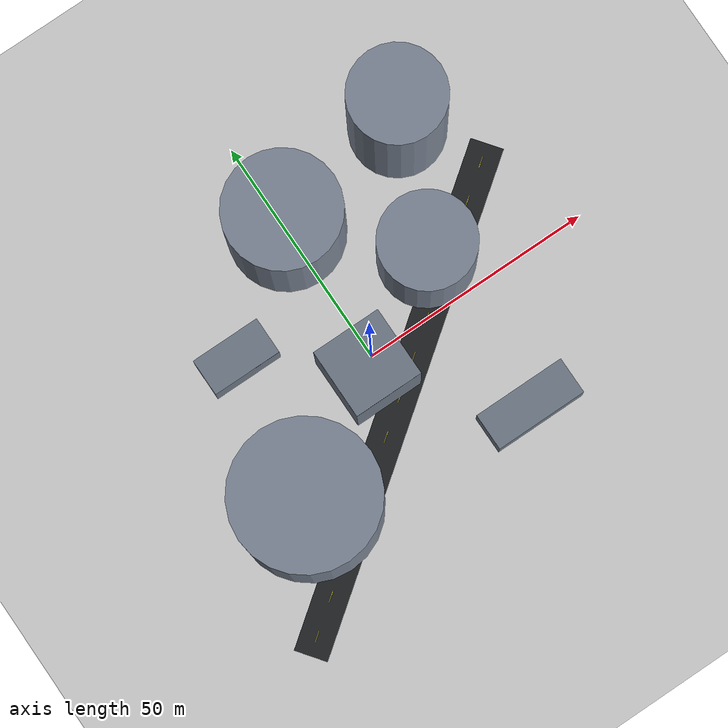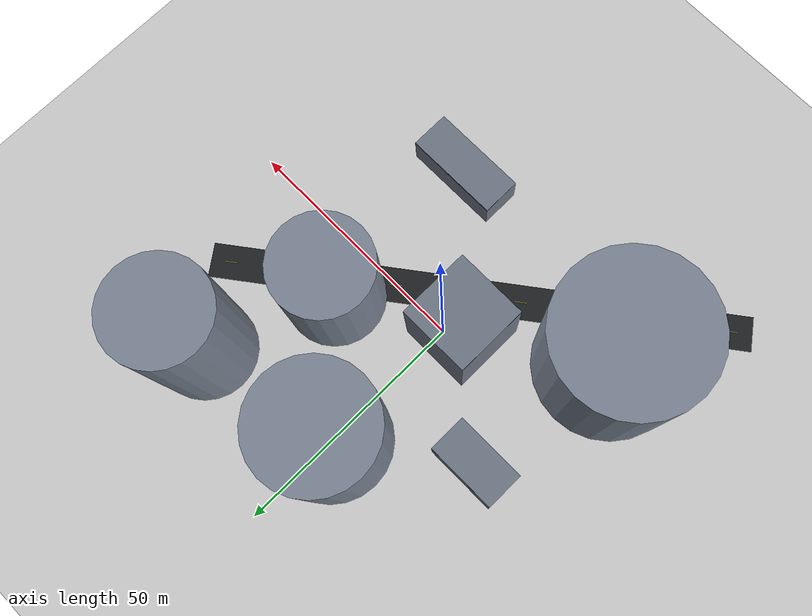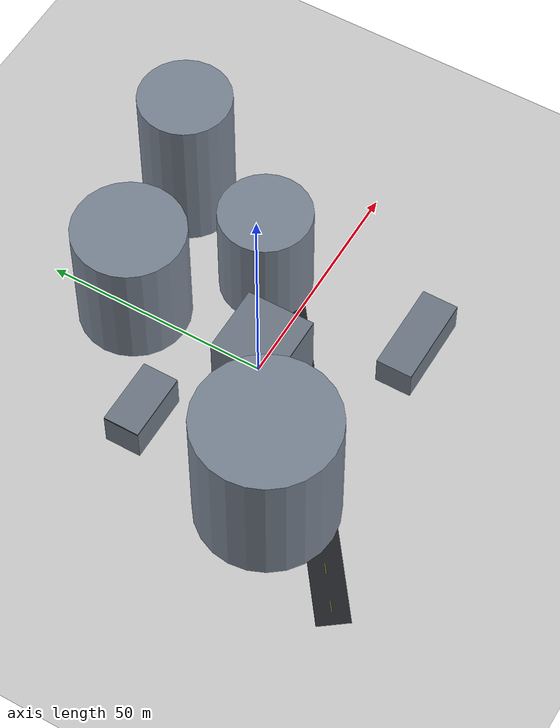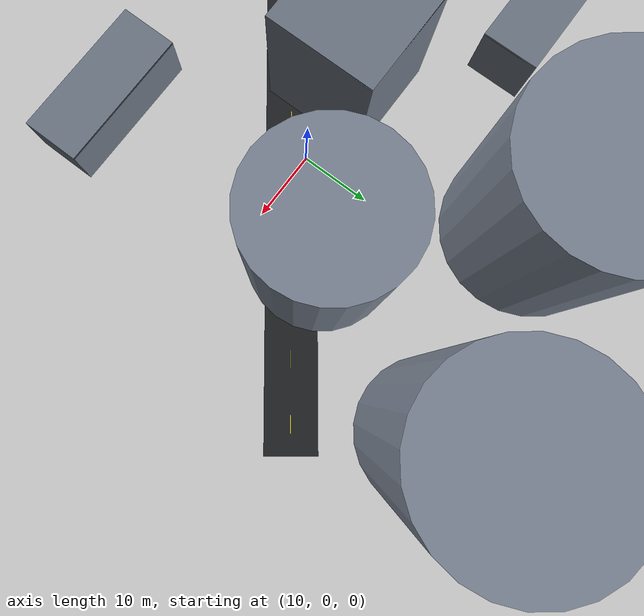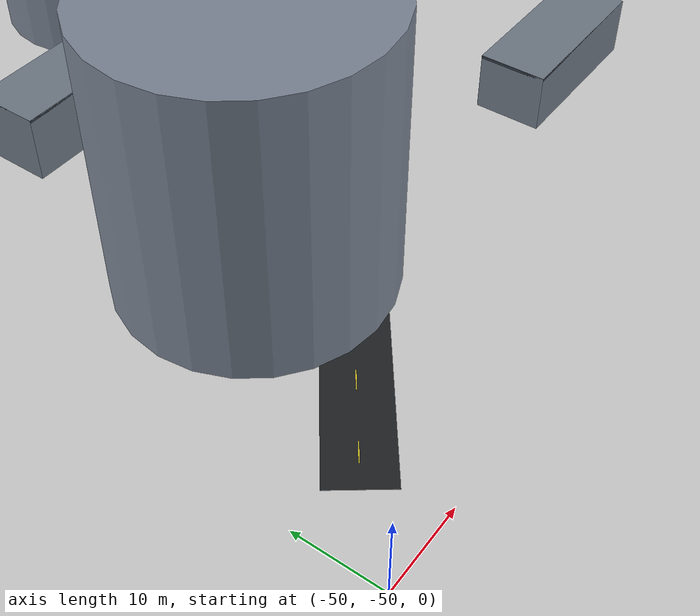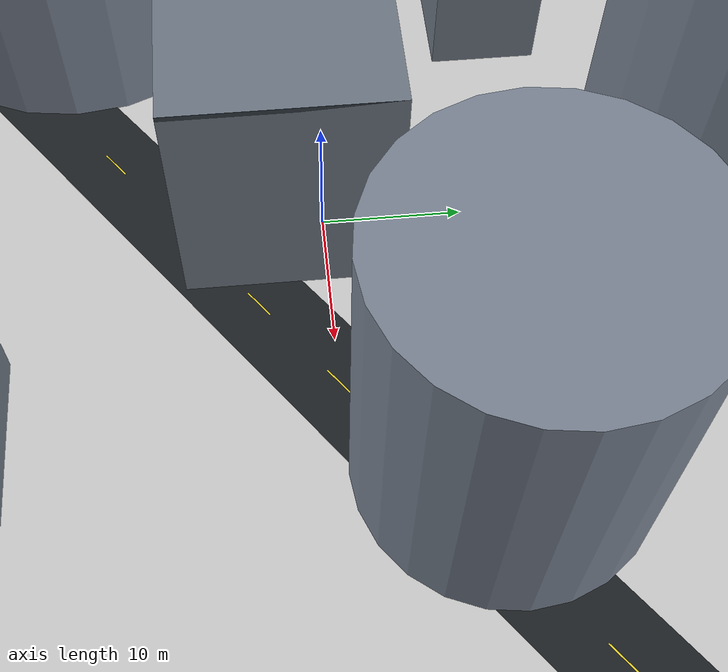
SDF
<?xml version="1.0"?>
<sdf version="1.6"><world name="logistics_6_mountain_medical">
  <physics name="default_physics" type="ode"><max_step_size>0.004</max_step_size><real_time_factor>1</real_time_factor><real_time_update_rate>250</real_time_update_rate><magnetic_field>6.0e-6 2.3e-5 -4.2e-5</magnetic_field></physics>
  <gravity>0 0 -9.8066</gravity>
  <include><uri>model://sun</uri></include>
  <include><uri>model://ground_plane</uri></include>
  <spherical_coordinates><surface_model>EARTH_WGS84</surface_model><latitude_deg>47.397742</latitude_deg><longitude_deg>8.545594</longitude_deg><elevation>488</elevation><heading_deg>0</heading_deg></spherical_coordinates>
<model name="service_road"><static>true</static><pose>0.000 -10.000 0.012 0.000 0.000 0.644</pose><link name="link"><visual name="visual"><cast_shadows>false</cast_shadows><geometry><box><size>108.000 7.0 0.02</size></box></geometry><material><ambient>0.12 0.13 0.14 1</ambient><diffuse>0.12 0.13 0.14 1</diffuse></material></visual></link></model>
<model name="road_mark_00"><static>true</static><pose>-40.000 -40.000 0.026 0.000 0.000 0.644</pose><link name="link"><visual name="visual"><cast_shadows>false</cast_shadows><geometry><box><size>2.4 0.12 0.012</size></box></geometry><material><ambient>0.92 0.84 0.18 1</ambient><diffuse>0.92 0.84 0.18 1</diffuse></material></visual></link></model>
<model name="road_mark_01"><static>true</static><pose>-33.333 -35.000 0.026 0.000 0.000 0.644</pose><link name="link"><visual name="visual"><cast_shadows>false</cast_shadows><geometry><box><size>2.4 0.12 0.012</size></box></geometry><material><ambient>0.92 0.84 0.18 1</ambient><diffuse>0.92 0.84 0.18 1</diffuse></material></visual></link></model>
<model name="road_mark_02"><static>true</static><pose>-26.667 -30.000 0.026 0.000 0.000 0.644</pose><link name="link"><visual name="visual"><cast_shadows>false</cast_shadows><geometry><box><size>2.4 0.12 0.012</size></box></geometry><material><ambient>0.92 0.84 0.18 1</ambient><diffuse>0.92 0.84 0.18 1</diffuse></material></visual></link></model>
<model name="road_mark_03"><static>true</static><pose>-20.000 -25.000 0.026 0.000 0.000 0.644</pose><link name="link"><visual name="visual"><cast_shadows>false</cast_shadows><geometry><box><size>2.4 0.12 0.012</size></box></geometry><material><ambient>0.92 0.84 0.18 1</ambient><diffuse>0.92 0.84 0.18 1</diffuse></material></visual></link></model>
<model name="road_mark_04"><static>true</static><pose>-13.333 -20.000 0.026 0.000 0.000 0.644</pose><link name="link"><visual name="visual"><cast_shadows>false</cast_shadows><geometry><box><size>2.4 0.12 0.012</size></box></geometry><material><ambient>0.92 0.84 0.18 1</ambient><diffuse>0.92 0.84 0.18 1</diffuse></material></visual></link></model>
<model name="road_mark_05"><static>true</static><pose>-6.667 -15.000 0.026 0.000 0.000 0.644</pose><link name="link"><visual name="visual"><cast_shadows>false</cast_shadows><geometry><box><size>2.4 0.12 0.012</size></box></geometry><material><ambient>0.92 0.84 0.18 1</ambient><diffuse>0.92 0.84 0.18 1</diffuse></material></visual></link></model>
<model name="road_mark_06"><static>true</static><pose>0.000 -10.000 0.026 0.000 0.000 0.644</pose><link name="link"><visual name="visual"><cast_shadows>false</cast_shadows><geometry><box><size>2.4 0.12 0.012</size></box></geometry><material><ambient>0.92 0.84 0.18 1</ambient><diffuse>0.92 0.84 0.18 1</diffuse></material></visual></link></model>
<model name="road_mark_07"><static>true</static><pose>6.667 -5.000 0.026 0.000 0.000 0.644</pose><link name="link"><visual name="visual"><cast_shadows>false</cast_shadows><geometry><box><size>2.4 0.12 0.012</size></box></geometry><material><ambient>0.92 0.84 0.18 1</ambient><diffuse>0.92 0.84 0.18 1</diffuse></material></visual></link></model>
<model name="road_mark_08"><static>true</static><pose>13.333 0.000 0.026 0.000 0.000 0.644</pose><link name="link"><visual name="visual"><cast_shadows>false</cast_shadows><geometry><box><size>2.4 0.12 0.012</size></box></geometry><material><ambient>0.92 0.84 0.18 1</ambient><diffuse>0.92 0.84 0.18 1</diffuse></material></visual></link></model>
<model name="road_mark_09"><static>true</static><pose>20.000 5.000 0.026 0.000 0.000 0.644</pose><link name="link"><visual name="visual"><cast_shadows>false</cast_shadows><geometry><box><size>2.4 0.12 0.012</size></box></geometry><material><ambient>0.92 0.84 0.18 1</ambient><diffuse>0.92 0.84 0.18 1</diffuse></material></visual></link></model>
<model name="road_mark_10"><static>true</static><pose>26.667 10.000 0.026 0.000 0.000 0.644</pose><link name="link"><visual name="visual"><cast_shadows>false</cast_shadows><geometry><box><size>2.4 0.12 0.012</size></box></geometry><material><ambient>0.92 0.84 0.18 1</ambient><diffuse>0.92 0.84 0.18 1</diffuse></material></visual></link></model>
<model name="road_mark_11"><static>true</static><pose>33.333 15.000 0.026 0.000 0.000 0.644</pose><link name="link"><visual name="visual"><cast_shadows>false</cast_shadows><geometry><box><size>2.4 0.12 0.012</size></box></geometry><material><ambient>0.92 0.84 0.18 1</ambient><diffuse>0.92 0.84 0.18 1</diffuse></material></visual></link></model>
<model name="road_mark_12"><static>true</static><pose>40.000 20.000 0.026 0.000 0.000 0.644</pose><link name="link"><visual name="visual"><cast_shadows>false</cast_shadows><geometry><box><size>2.4 0.12 0.012</size></box></geometry><material><ambient>0.92 0.84 0.18 1</ambient><diffuse>0.92 0.84 0.18 1</diffuse></material></visual></link></model>
<model name="obstacle_00_peak_a"><static>true</static><pose>-27.000 -18.000 16.000 0 0 0</pose><link name="link"><collision name="collision"><geometry><cylinder><radius>15.000</radius><length>32.000</length></cylinder></geometry></collision><visual name="visual"><geometry><cylinder><radius>15.000</radius><length>32.000</length></cylinder></geometry><material><ambient>0.48 0.52 0.58 1</ambient><diffuse>0.48 0.52 0.58 1</diffuse></material></visual></link></model>
<model name="obstacle_01_peak_b"><static>true</static><pose>20.000 10.000 12.000 0 0 0</pose><link name="link"><collision name="collision"><geometry><cylinder><radius>10.000</radius><length>24.000</length></cylinder></geometry></collision><visual name="visual"><geometry><cylinder><radius>10.000</radius><length>24.000</length></cylinder></geometry><material><ambient>0.48 0.52 0.58 1</ambient><diffuse>0.48 0.52 0.58 1</diffuse></material></visual></link></model>
<model name="obstacle_02_peak_c"><static>true</static><pose>0.000 30.000 14.000 0 0 0</pose><link name="link"><collision name="collision"><geometry><cylinder><radius>12.000</radius><length>28.000</length></cylinder></geometry></collision><visual name="visual"><geometry><cylinder><radius>12.000</radius><length>28.000</length></cylinder></geometry><material><ambient>0.48 0.52 0.58 1</ambient><diffuse>0.48 0.52 0.58 1</diffuse></material></visual></link></model>
<model name="obstacle_03_gorge_bridge"><static>true</static><pose>-22.500 14.000 4.000 0 0 0</pose><link name="link"><collision name="collision"><geometry><box><size>15.000 8.000 8.000</size></box></geometry></collision><visual name="visual"><geometry><box><size>15.000 8.000 8.000</size></box></geometry><material><ambient>0.43 0.47 0.52 1</ambient><diffuse>0.43 0.47 0.52 1</diffuse></material></visual></link></model>
<model name="obstacle_03_gorge_bridge_roof"><static>true</static><pose>-22.500 14.000 7.820 0.000 0.000 0.000</pose><link name="link"><visual name="visual"><cast_shadows>false</cast_shadows><geometry><box><size>15.000 8.000 0.360</size></box></geometry><material><ambient>0.20 0.23 0.27 1</ambient><diffuse>0.20 0.23 0.27 1</diffuse></material></visual></link></model>
<model name="obstacle_04_cliff_road"><static>true</static><pose>20.000 -26.000 3.500 0 0 0</pose><link name="link"><collision name="collision"><geometry><box><size>20.000 8.000 7.000</size></box></geometry></collision><visual name="visual"><geometry><box><size>20.000 8.000 7.000</size></box></geometry><material><ambient>0.43 0.47 0.52 1</ambient><diffuse>0.43 0.47 0.52 1</diffuse></material></visual></link></model>
<model name="obstacle_04_cliff_road_roof"><static>true</static><pose>20.000 -26.000 6.820 0.000 0.000 0.000</pose><link name="link"><visual name="visual"><cast_shadows>false</cast_shadows><geometry><box><size>20.000 8.000 0.360</size></box></geometry><material><ambient>0.20 0.23 0.27 1</ambient><diffuse>0.20 0.23 0.27 1</diffuse></material></visual></link></model>
<model name="obstacle_05_signal_tower"><static>true</static><pose>30.000 35.000 17.500 0 0 0</pose><link name="link"><collision name="collision"><geometry><cylinder><radius>10.000</radius><length>35.000</length></cylinder></geometry></collision><visual name="visual"><geometry><cylinder><radius>10.000</radius><length>35.000</length></cylinder></geometry><material><ambient>0.48 0.52 0.58 1</ambient><diffuse>0.48 0.52 0.58 1</diffuse></material></visual></link></model>
<model name="obstacle_06_forest"><static>true</static><pose>-2.500 -2.500 9.000 0 0 0</pose><link name="link"><collision name="collision"><geometry><box><size>15.000 15.000 18.000</size></box></geometry></collision><visual name="visual"><geometry><box><size>15.000 15.000 18.000</size></box></geometry><material><ambient>0.43 0.47 0.52 1</ambient><diffuse>0.43 0.47 0.52 1</diffuse></material></visual></link></model>
<model name="obstacle_06_forest_roof"><static>true</static><pose>-2.500 -2.500 17.820 0.000 0.000 0.000</pose><link name="link"><visual name="visual"><cast_shadows>false</cast_shadows><geometry><box><size>15.000 15.000 0.360</size></box></geometry><material><ambient>0.20 0.23 0.27 1</ambient><diffuse>0.20 0.23 0.27 1</diffuse></material></visual></link></model>
<model name="start_zone"><static>true</static><pose>-40.000 -40.000 -0.009 0 0 0</pose><link name="link"><visual name="visual"><cast_shadows>false</cast_shadows><geometry><cylinder><radius>1.5</radius><length>0.02</length></cylinder></geometry><material><ambient>0.1 0.8 0.1 1</ambient><diffuse>0.1 0.8 0.1 1</diffuse></material></visual></link></model>
<model name="goal_zone"><static>true</static><pose>40.000 20.000 -0.009 0 0 0</pose><link name="link"><visual name="visual"><cast_shadows>false</cast_shadows><geometry><cylinder><radius>1.5</radius><length>0.02</length></cylinder></geometry><material><ambient>0.9 0.15 0.1 1</ambient><diffuse>0.9 0.15 0.1 1</diffuse></material></visual></link></model>
</world></sdf>
